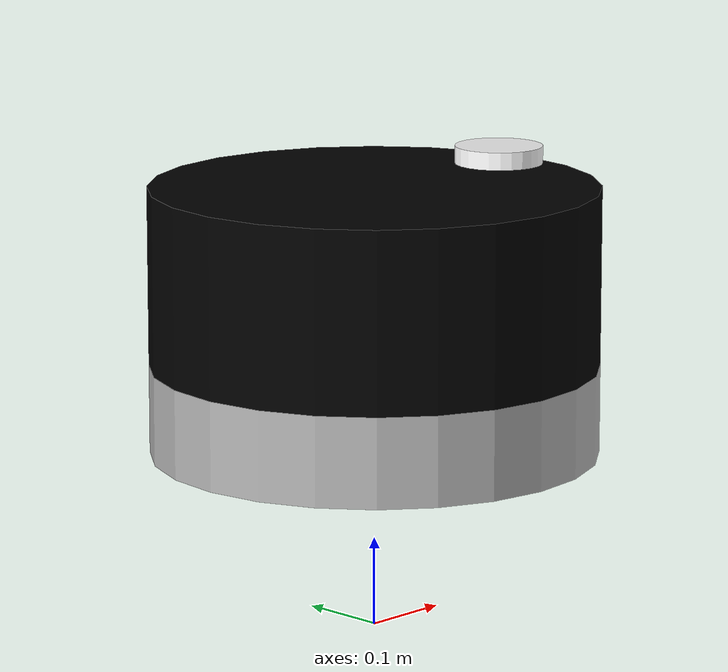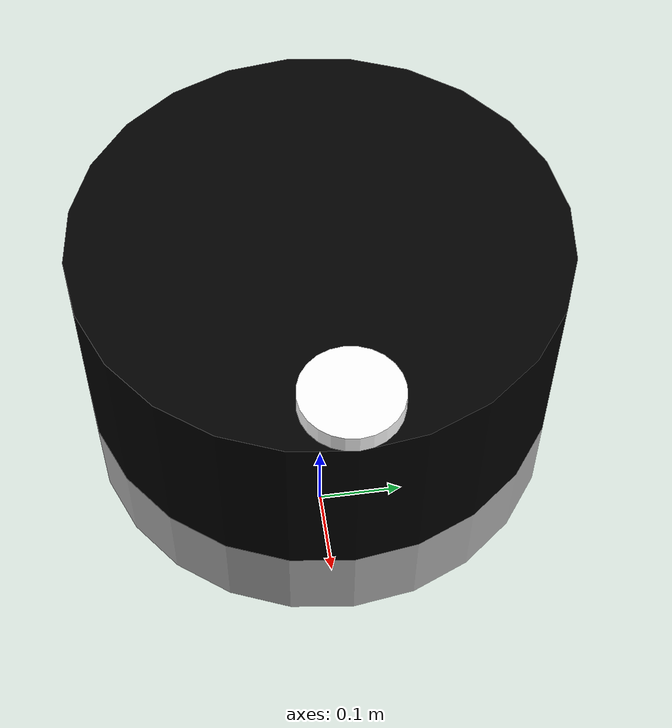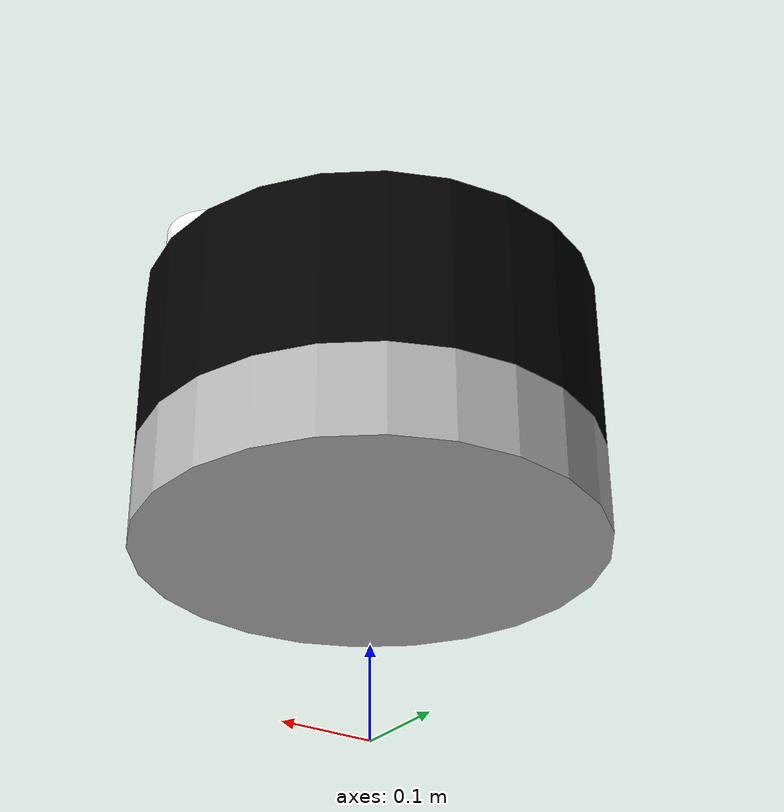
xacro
<?xml version="1.0"?>
<robot name="single_motor" xmlns:xacro="http://www.ros.org/wiki/xacro">

    <xacro:arg name="is_simulation" default="true" />

    <link name="base_footprint">
    </link>

    <!-- raise the robot a bit higher to prevent it from stucking in the ground -->
    <joint name="joint_base_to_footprint" type="fixed">
        <origin rpy="0 0 0" xyz="0 0 0.2" />
        <parent link="base_footprint" />
        <child link="base_link" />
    </joint>

    <link name="base_link" />

    <xacro:include filename="$(find metav_description)/urdf/playground/motor.xacro" />
    <xacro:motor name="motor" connected_to="base_link" x="0" y="0" />

    <xacro:if value="$(arg is_simulation)">
        <ros2_control
            name="multiple_motors_control" type="system">
            <hardware>
                <plugin>ign_ros2_control/IgnitionSystem</plugin>
            </hardware>
            <joint name="motor_joint">
                <command_interface name="velocity" />
                <state_interface name="position" />
                <state_interface name="velocity" />
            </joint>
        </ros2_control>
    </xacro:if>

    <xacro:unless value="$(arg is_simulation)">
        <ros2_control
            name="single_motor_control" type="system">
            <hardware>
                <plugin>meta_hardware/MetaRobotMiMotorNetwork</plugin>
                <param name="can_network_name">can0</param>
            </hardware>
            <joint name="motor_joint">
                <command_interface name="effort" />
                <state_interface name="velocity" />
                <state_interface name="effort" />
                <param name="motor_model">CyberGear</param>
                <param name="motor_id">1</param>
                <param name="mechanical_reduction">-1.0</param>
                <param name="offset">0.0</param>
                <param name="control_mode">dynamic</param>
                <param name="Kp">0.0</param>
                <param name="Kd">1.0</param>
            </joint>
        </ros2_control>

        <ros2_control
            name="single_motor_feedback" type="system">
            <hardware>
                <plugin>meta_hardware/MetaRobotBrtEncoderNetwork</plugin>
                <param name="can_network_name">can0</param>
            </hardware>
            <joint name="motor_joint">
                <state_interface name="position" />
                <param name="encoder_model">BRT38-1024</param>
                <param name="encoder_id">1</param>
                <param name="mechanical_reduction">-1.0</param>
                <param name="offset">0.0</param>
            </joint>
        </ros2_control>
    </xacro:unless>

    <xacro:if
        value="$(arg is_simulation)">
        <gazebo>
            <plugin filename="ign_ros2_control-system"
                name="ign_ros2_control::IgnitionROS2ControlPlugin">
                <parameters>$(find meta_bringup)/config/single_motor_ext_encoder.yaml</parameters>
            </plugin>
        </gazebo>
    </xacro:if>
</robot>

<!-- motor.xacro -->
<robot name="motor" xmlns:xacro="http://www.ros.org/wiki/xacro">

    <xacro:macro name="cylinder_inertia" params="m r h">
        <inertia ixx="${m*(3*r*r+h*h)/12}" ixy="0" ixz="0"
            iyy="${m*(3*r*r+h*h)/12}" iyz="0"
            izz="${m*r*r/2}" />
    </xacro:macro>

    <xacro:macro name="motor" params="name connected_to x y">

        <joint name="${name}_connection" type="fixed">
            <origin xyz="${x} ${y} 0.0" rpy="0 0 0" />
            <parent link="${connected_to}" />
            <child link="${name}_base_link" />
        </joint>

        <link name="${name}_base_link">
            <inertial>
                <mass value="10.0" />
                <origin xyz="0 0 0.1" />
                <xacro:cylinder_inertia m="1.0" r="0.25" h="0.1" />
            </inertial>
            <visual>
                <origin xyz="0 0 0.05" rpy="0 0 0" />
                <geometry>
                    <cylinder radius="0.25" length="0.1" />
                </geometry>
                <material name="silver">
                    <color rgba="0.700 0.700 0.700 1.000" />
                </material>
            </visual>
            <collision>
                <origin xyz="0 0 0.05" rpy="0 0 0" />
                <geometry>
                    <cylinder radius="0.25" length="0.1" />
                </geometry>
            </collision>
        </link>

        <joint name="${name}_joint" type="continuous">
            <origin xyz="0 0 0.1" rpy="0 0 0" />
            <parent link="${name}_base_link" />
            <child link="${name}_top" />
            <dynamics damping="0.0" friction="0.1" />
            <limit effort="30" velocity="2.0" />
            <axis xyz="0 0 1" />
        </joint>

        <link name="${name}_top">
            <inertial>
                <mass value="20.0" />
                <origin xyz="0 0 0.1" />
                <xacro:cylinder_inertia m="20.0" r="0.25" h="0.2" />
            </inertial>
            <visual>
                <origin xyz="0 0 0.1" rpy="0 0 0" />
                <geometry>
                    <cylinder radius="0.25" length="0.2" />
                </geometry>
                <material name="black">
                    <color rgba="0.000 0.000 0.000 1.000" />
                </material>
            </visual>
            <collision>
                <origin xyz="0 0 0.1" rpy="0 0 0" />
                <geometry>
                    <cylinder radius="0.25" length="0.2" />
                </geometry>
            </collision>
        </link>

        <joint name="${name}_top_indicator_joint" type="fixed">
            <origin xyz="0.2 0 0.2" rpy="0 0 0" />
            <parent link="${name}_top" />
            <child link="${name}_top_indicator" />
        </joint>

        <link name="${name}_top_indicator">
            <inertial>
                <mass value="1.0" />
                <origin xyz="0 0 0.01" />
                <xacro:cylinder_inertia m="1.0" r="0.05" h="0.02" />
            </inertial>
            <visual>
                <origin xyz="0 0 0.01" rpy="0 0 0" />
                <geometry>
                    <cylinder radius="0.05" length="0.02" />
                </geometry>
                <material name="white">
                    <color rgba="1.000 1.000 1.000 1.000" />
                </material>
            </visual>
            <collision>
                <origin xyz="0 0 0.01" rpy="0 0 0" />
                <geometry>
                    <cylinder radius="0.05" length="0.02" />
                </geometry>
            </collision>
        </link>
    </xacro:macro>
</robot>
